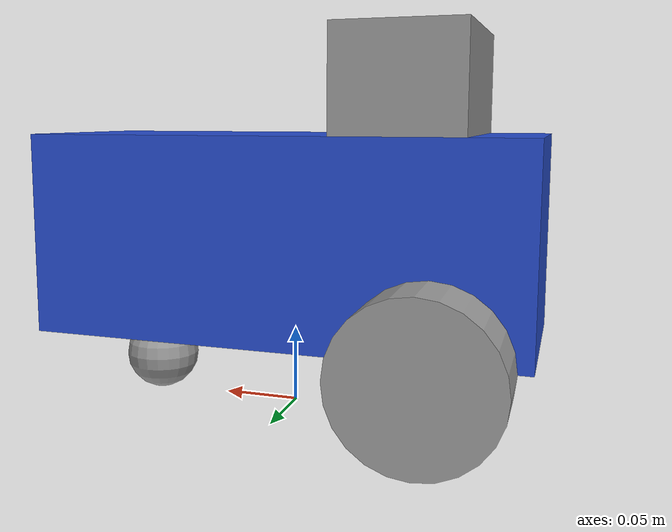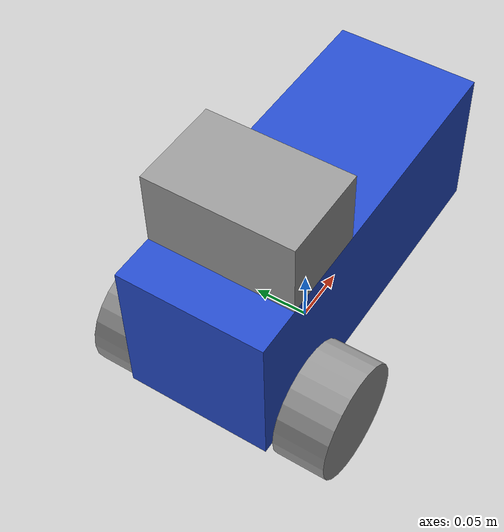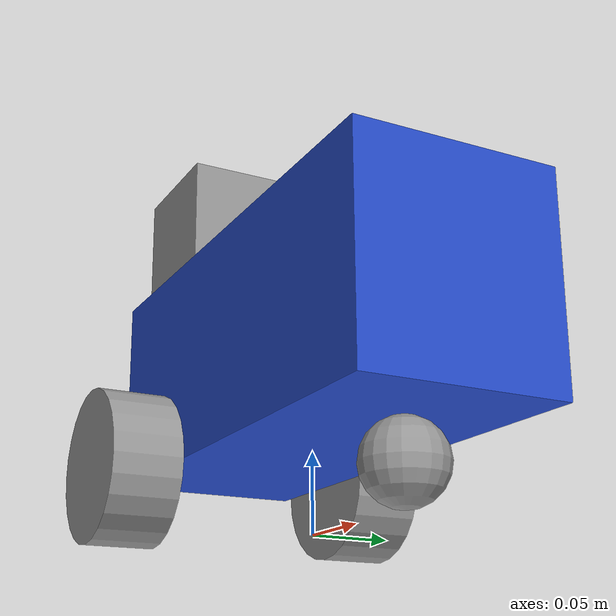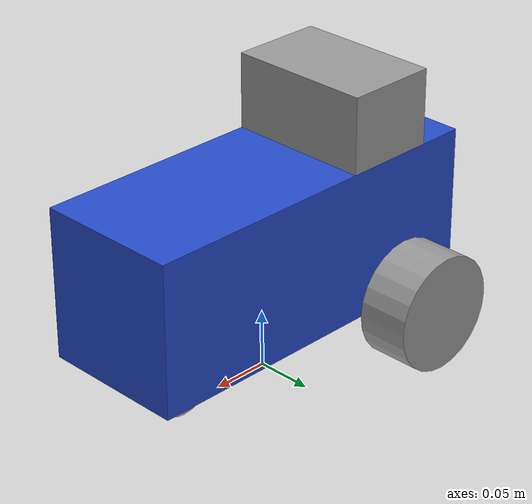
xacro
<?xml version="1.0"?>
<robot xmlns:xacro="http://www.ros.org/wiki/xacro">

    <xacro:property name="base_length" value="0.318" />
    <xacro:property name="base_width" value="0.125" />
    <xacro:property name="base_height" value="0.130" />
    <xacro:property name="wheel_radius" value="0.05" />
    <xacro:property name="wheel_length" value="0.045" />
    <xacro:property name="wheelbase" value="0.2" />

    <link name="base_footprint" />

    <link name="base_link">
        <visual>
            <geometry>
                <box size="${base_length} ${base_width} ${base_height}" />
            </geometry>
            <origin xyz="0 0 ${base_height / 2.0}" rpy="0 0 0" />
            <material name="blue" />
        </visual>
        <collision>
            <geometry>
                <box size="${base_length} ${base_width} ${base_height}" />
            </geometry>
            <origin xyz="0 0 ${base_height / 2.0}" rpy="0 0 0" />
        </collision>
        <xacro:box_inertia m="5.0" l="${2*base_length}" w="${2*base_width}" h="${2*base_height}"
                           xyz="0 0 ${base_height / 2.0}" rpy="0 0 0" />
    </link>

    <link name="monitor_link">
        <visual>
            <geometry>
                <box size="${base_length / 4.0} ${base_width} ${base_height / 2.0}" />
            </geometry>
            <origin xyz="0 0 0" rpy="0 0 0" />
            <material name="grey" />
        </visual>
        <collision>
            <geometry>
                <box size="${base_length / 4.0} ${base_width} ${base_height / 2.0}" />
            </geometry>
            <origin xyz="0 0 0" rpy="0 0 0" />
        </collision>
        <xacro:box_inertia
            m="0.1"
            l="${base_length / 4.0}"
            w="${base_width}"
            h="${base_height / 2.0}"
            xyz="0 0 0"
            rpy="0 0 0" />
    </link>

    <joint name="base_monitor_joint" type="fixed">
        <parent link="base_link" />
        <child link="monitor_link" />
        <origin xyz="${-base_length / 4.0} 0 ${base_height * 1.25}" rpy="0 0 0" />
    </joint>

    <xacro:macro name="wheel_link" params="prefix">
        <link name="${prefix}_wheel_link">
            <visual>
                <geometry>
                    <cylinder radius="${wheel_radius}" length="${wheel_length}" />
                </geometry>
                <origin xyz="0 0 0" rpy="${pi / 2.0} 0 0" />
                <material name="grey" />
            </visual>
            <collision>
                <geometry>
                    <cylinder radius="${wheel_radius}" length="${wheel_length}" />
                </geometry>
                <origin xyz="0 0 0" rpy="${pi / 2.0} 0 0" />
            </collision>
            <xacro:cylinder_inertia m="1.0" r="${2*wheel_radius}" h="${2*wheel_length}"
                                    xyz="0 0 0" rpy="${pi / 2.0} 0 0" />
        </link>
    </xacro:macro>

    <xacro:wheel_link prefix="rear_right" />
    <xacro:wheel_link prefix="rear_left" />

    <link name="caster_wheel_link">
        <visual>
            <geometry>
                <sphere radius="${wheel_radius / 2.0}" />
            </geometry>
            <origin xyz="0 0 0" rpy="0 0 0" />
            <material name="grey" />
        </visual>
        <collision>
            <geometry>
                <sphere radius="${wheel_radius / 2.0}" />
            </geometry>
            <origin xyz="0 0 0" rpy="0 0 0" />
        </collision>
        <xacro:sphere_inertia m="0.5" r="${2*wheel_radius / 2.0}"
                              xyz="0 0 0" rpy="0 0 0" />
    </link>

    <joint name="base_joint" type="fixed">
        <parent link="base_footprint" />
        <child link="base_link" />
        <origin xyz="0 0 ${wheel_radius}" rpy="0 0 0"/>
    </joint>

    <joint name="base_rear_right_wheel_joint" type="continuous">
        <parent link="base_link" />
        <child link="rear_right_wheel_link" />
        <origin xyz="${-wheelbase / 2.0} ${-(base_width + wheel_length) / 2.0} 0" rpy="0 0 0" />
        <axis xyz="0 1 0" />
    </joint>

    <joint name="base_rear_left_wheel_joint" type="continuous">
        <parent link="base_link" />
        <child link="rear_left_wheel_link" />
        <origin xyz="${-wheelbase / 2.0} ${(base_width + wheel_length) / 2.0} 0" rpy="0 0 0" />
        <axis xyz="0 1 0" />
    </joint>

    <joint name="base_caster_wheel_joint" type="fixed">
        <parent link="base_link" />
        <child link="caster_wheel_link" />
        <origin xyz="${wheelbase / 2.0} 0 ${-wheel_radius / 2.0}" rpy="0 0 0" />
    </joint>

</robot>
